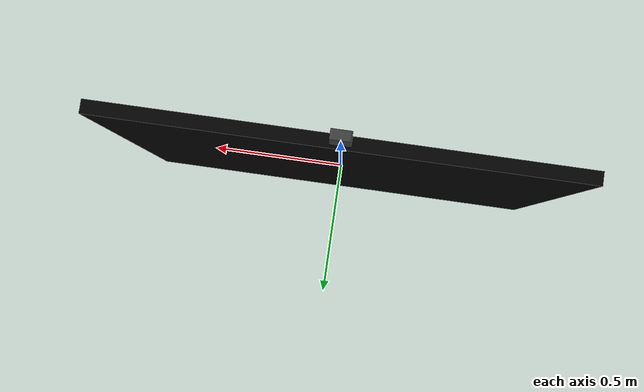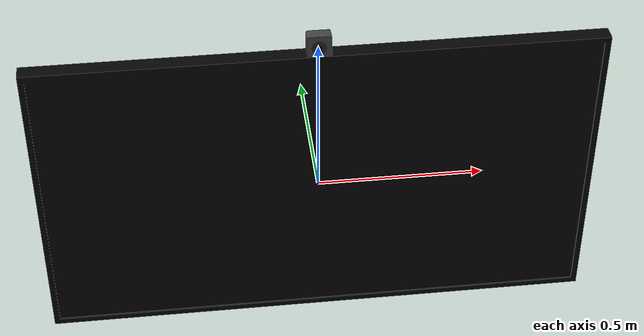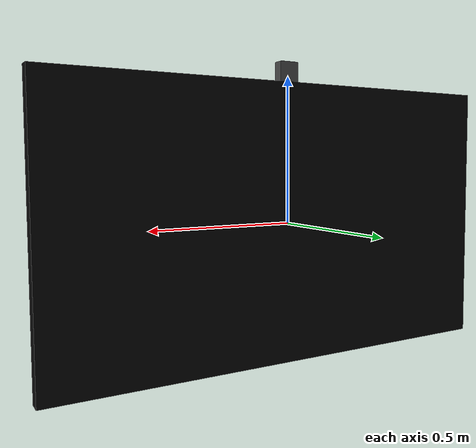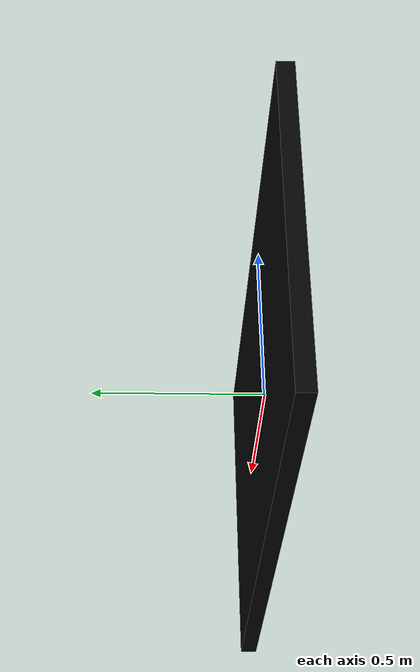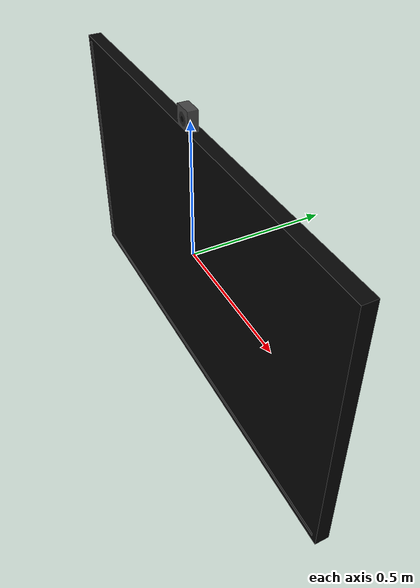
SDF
<?xml version='1.0'?>
<sdf version='1.5'>
    <model name="413_monitor">
        <pose>0 0 0 0 0 0</pose>
        <static>true</static>
        <link name='model_body'>
            <visual name="visual">
                <geometry>
                    <mesh>
                        <uri>model://rs_gazebo/meshes/ss_hq4/413_monitor/413_monitor_visual.dae</uri>
                        <scale>1 1 1</scale>
                    </mesh>
                </geometry>
            </visual>

            <collision name="collision">
                <geometry>
                    <box>
                        <size>1.69 0.04 0.97</size>
                    </box>
                </geometry>
            </collision>

            <inertial>
                <pose> 0 0 0 0 0 0</pose>
                <inertia>
                    <ixx>0.549791666667</ixx>
                    <ixy>0</ixy>
                    <ixz>0</ixz>
                    <iyy>2.21491666667</iyy>
                    <iyz>0</iyz>
                    <izz>1.66699166667</izz>
                </inertia>
                <mass>7.0</mass>
            </inertial>
        </link>
    </model>
</sdf>
